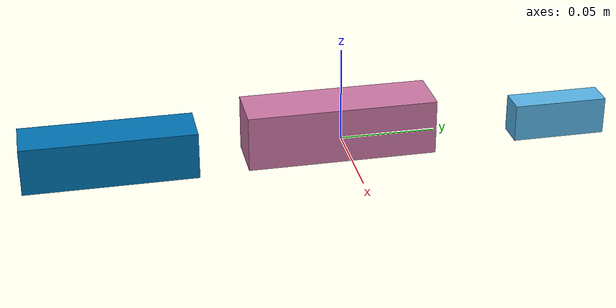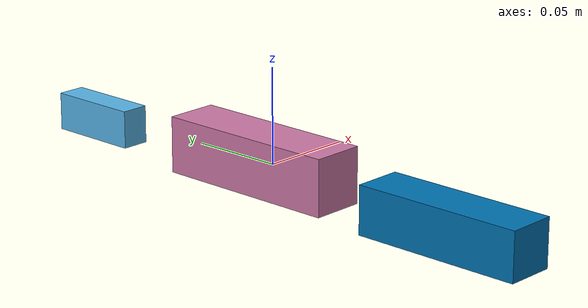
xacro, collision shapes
<?xml version="1.0"?>
<robot name="eys3d_three_models" xmlns:xacro="http://www.ros.org/wiki/xacro">
  <xacro:include filename="$(find eys3d_camera)/urdf/eys3d_G100P.urdf.xacro"/>
  <xacro:include filename="$(find eys3d_camera)/urdf/eys3d_G62.urdf.xacro"/>
  <xacro:include filename="$(find eys3d_camera)/urdf/eys3d_R77.urdf.xacro"/>

  <link name="base_link"/>

  <xacro:eys3d_G62  name="G62_1"   parent="base_link">
    <origin xyz="0  0.12 0" rpy="0 0 0"/>
  </xacro:eys3d_G62>
  <xacro:eys3d_G100P name="G100P_1" parent="base_link">
    <origin xyz="0  0    0" rpy="0 0 0"/>
  </xacro:eys3d_G100P>
  <xacro:eys3d_R77  name="R77_1"   parent="base_link">
    <origin xyz="0 -0.12 0" rpy="0 0 0"/>
  </xacro:eys3d_R77>
</robot>

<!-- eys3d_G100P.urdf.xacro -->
<robot xmlns:xacro="http://www.ros.org/wiki/xacro">

  <xacro:macro name="eys3d_G100P" params="name:=G100P_1 parent *origin">
    <joint name="${name}_joint" type="fixed">
      <xacro:insert_block name="origin"/>
      <parent link="${parent}"/>
      <child link="${name}_link"/>
    </joint>
    <link name="${name}_link">
      <visual>
        <geometry>
          <mesh filename="package://eys3d_camera/meshes/G100P.dae"/>
        </geometry>
      </visual>
      <collision>
        <origin xyz="-0.00716 0 0.00446"/>
        <geometry>
          <box size="0.02781 0.09954 0.02934"/>
        </geometry>
      </collision>
      <xacro:property name="m" value="0.137"/>
      <xacro:property name="sx" value="0.02781"/>
      <xacro:property name="sy" value="0.09954"/>
      <xacro:property name="sz" value="0.02934"/>
      <inertial>
        <origin xyz="-0.00716 0 0.00446"/>
        <mass value="${m}"/>
        <inertia ixx="${m/12*(sy*sy+sz*sz)}" ixy="0" ixz="0"
                 iyy="${m/12*(sx*sx+sz*sz)}" iyz="0"
                 izz="${m/12*(sx*sx+sy*sy)}"/>
      </inertial>
    </link>

    <!-- Mounting-hole frames: 1/4-20 UNC tripod boss plus two M3 on the back, two M3 on the bottom.
         Positions come from the factory CAD; orientation matches
         ${name}_link. -->
    <joint name="${name}_tripod_frame_joint" type="fixed">
      <origin xyz="-0.0224  0       0" rpy="0 0 0"/>
      <parent link="${name}_link"/>
      <child link="${name}_tripod_frame"/>
    </joint>
    <link name="${name}_tripod_frame"/>
    <joint name="${name}_back_screw1_frame_joint" type="fixed">
      <origin xyz="-0.0224  0.0225  0" rpy="0 0 0"/>
      <parent link="${name}_link"/>
      <child link="${name}_back_screw1_frame"/>
    </joint>
    <link name="${name}_back_screw1_frame"/>
    <joint name="${name}_back_screw2_frame_joint" type="fixed">
      <origin xyz="-0.0224 -0.0225  0" rpy="0 0 0"/>
      <parent link="${name}_link"/>
      <child link="${name}_back_screw2_frame"/>
    </joint>
    <link name="${name}_back_screw2_frame"/>
    <joint name="${name}_bottom_screw1_frame_joint" type="fixed">
      <origin xyz="-0.0060  0.0400 -0.0137" rpy="0 0 0"/>
      <parent link="${name}_link"/>
      <child link="${name}_bottom_screw1_frame"/>
    </joint>
    <link name="${name}_bottom_screw1_frame"/>
    <joint name="${name}_bottom_screw2_frame_joint" type="fixed">
      <origin xyz="-0.0060 -0.0400 -0.0137" rpy="0 0 0"/>
      <parent link="${name}_link"/>
      <child link="${name}_bottom_screw2_frame"/>
    </joint>
    <link name="${name}_bottom_screw2_frame"/>
  </xacro:macro>
</robot>

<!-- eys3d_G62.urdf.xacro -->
<robot xmlns:xacro="http://www.ros.org/wiki/xacro">

  <xacro:macro name="eys3d_G62" params="name:=G62_1 parent *origin">
    <joint name="${name}_joint" type="fixed">
      <xacro:insert_block name="origin"/>
      <parent link="${parent}"/>
      <child link="${name}_link"/>
    </joint>
    <link name="${name}_link">
      <visual>
        <geometry>
          <mesh filename="package://eys3d_camera/meshes/G62.dae"/>
        </geometry>
      </visual>
      <collision>
        <origin xyz="-0.00433 0 0"/>
        <geometry>
          <box size="0.01498 0.05 0.02"/>
        </geometry>
      </collision>
      <xacro:property name="m" value="0.0293"/>
      <xacro:property name="sx" value="0.01498"/>
      <xacro:property name="sy" value="0.05"/>
      <xacro:property name="sz" value="0.02"/>
      <inertial>
        <origin xyz="-0.00433 0 0"/>
        <mass value="${m}"/>
        <inertia ixx="${m/12*(sy*sy+sz*sz)}" ixy="0" ixz="0"
                 iyy="${m/12*(sx*sx+sz*sz)}" iyz="0"
                 izz="${m/12*(sx*sx+sy*sy)}"/>
      </inertial>
    </link>

    <!-- Mounting-hole frames: four M1.6 on the back.
         Positions come from the factory CAD; orientation matches
         ${name}_link. -->
    <joint name="${name}_back_screw1_frame_joint" type="fixed">
      <origin xyz="-0.0118  0.0218  0.00425" rpy="0 0 0"/>
      <parent link="${name}_link"/>
      <child link="${name}_back_screw1_frame"/>
    </joint>
    <link name="${name}_back_screw1_frame"/>
    <joint name="${name}_back_screw2_frame_joint" type="fixed">
      <origin xyz="-0.0118  0.0218 -0.00425" rpy="0 0 0"/>
      <parent link="${name}_link"/>
      <child link="${name}_back_screw2_frame"/>
    </joint>
    <link name="${name}_back_screw2_frame"/>
    <joint name="${name}_back_screw3_frame_joint" type="fixed">
      <origin xyz="-0.0118 -0.0218  0.00425" rpy="0 0 0"/>
      <parent link="${name}_link"/>
      <child link="${name}_back_screw3_frame"/>
    </joint>
    <link name="${name}_back_screw3_frame"/>
    <joint name="${name}_back_screw4_frame_joint" type="fixed">
      <origin xyz="-0.0118 -0.0218 -0.00425" rpy="0 0 0"/>
      <parent link="${name}_link"/>
      <child link="${name}_back_screw4_frame"/>
    </joint>
    <link name="${name}_back_screw4_frame"/>
  </xacro:macro>
</robot>

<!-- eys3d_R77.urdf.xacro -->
<robot xmlns:xacro="http://www.ros.org/wiki/xacro">

  <xacro:macro name="eys3d_R77" params="name:=R77_1 parent *origin">
    <joint name="${name}_joint" type="fixed">
      <xacro:insert_block name="origin"/>
      <parent link="${parent}"/>
      <child link="${name}_link"/>
    </joint>
    <link name="${name}_link">
      <visual>
        <geometry>
          <mesh filename="package://eys3d_camera/meshes/R77.dae"/>
        </geometry>
      </visual>
      <collision>
        <origin xyz="-0.00805 0 0"/>
        <geometry>
          <box size="0.0255 0.09 0.025"/>
        </geometry>
      </collision>
      <xacro:property name="m" value="0.096"/>
      <xacro:property name="sx" value="0.0255"/>
      <xacro:property name="sy" value="0.09"/>
      <xacro:property name="sz" value="0.025"/>
      <inertial>
        <origin xyz="-0.00805 0 0"/>
        <mass value="${m}"/>
        <inertia ixx="${m/12*(sy*sy+sz*sz)}" ixy="0" ixz="0"
                 iyy="${m/12*(sx*sx+sz*sz)}" iyz="0"
                 izz="${m/12*(sx*sx+sy*sy)}"/>
      </inertial>
    </link>

    <!-- Mounting-hole frames: two M3 on the back, two M3 on the bottom.
         Positions come from the factory CAD; orientation matches
         ${name}_link. -->
    <joint name="${name}_back_screw1_frame_joint" type="fixed">
      <origin xyz="-0.0208  0.0225  0" rpy="0 0 0"/>
      <parent link="${name}_link"/>
      <child link="${name}_back_screw1_frame"/>
    </joint>
    <link name="${name}_back_screw1_frame"/>
    <joint name="${name}_back_screw2_frame_joint" type="fixed">
      <origin xyz="-0.0208 -0.0225  0" rpy="0 0 0"/>
      <parent link="${name}_link"/>
      <child link="${name}_back_screw2_frame"/>
    </joint>
    <link name="${name}_back_screw2_frame"/>
    <joint name="${name}_bottom_screw1_frame_joint" type="fixed">
      <origin xyz="-0.0058  0.0170 -0.0125" rpy="0 0 0"/>
      <parent link="${name}_link"/>
      <child link="${name}_bottom_screw1_frame"/>
    </joint>
    <link name="${name}_bottom_screw1_frame"/>
    <joint name="${name}_bottom_screw2_frame_joint" type="fixed">
      <origin xyz="-0.0058 -0.0170 -0.0125" rpy="0 0 0"/>
      <parent link="${name}_link"/>
      <child link="${name}_bottom_screw2_frame"/>
    </joint>
    <link name="${name}_bottom_screw2_frame"/>
  </xacro:macro>
</robot>
